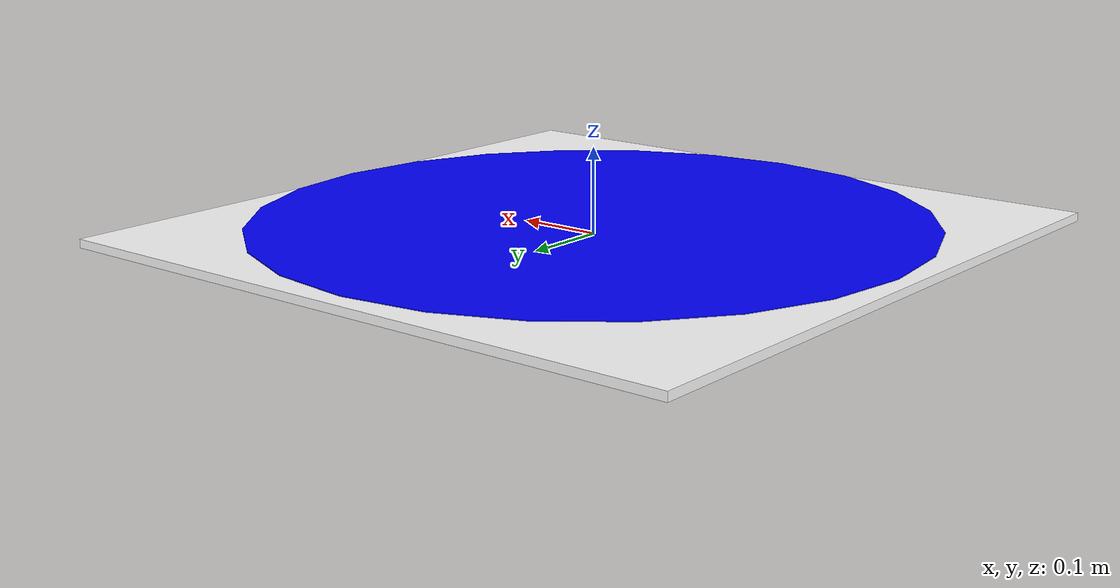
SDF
<?xml version="1.0" ?>
<sdf version="1.10">
  <model name="plataforma_com_circulo">
    <static>true</static>
    <pose>0 0 0.005 0 0 0</pose> <!-- levemente acima do solo -->
    <link name="link">

      <!-- Base branca (quadrado) -->
      <visual name="base">
        <pose>0 0 0 0 0 0</pose>
        <geometry>
          <box>
            <size>0.8 0.8 0.01</size>
          </box>
        </geometry>
        <material>
          <ambient>1 1 1 1</ambient>
          <diffuse>1 1 1 1</diffuse>
        </material>
      </visual>

      <!-- Círculo azul por cima -->
      <visual name="circle">
        <pose>0 0 0.011 0 0 0</pose> <!-- ligeiramente acima da base -->
        <geometry>
          <cylinder>
            <radius>0.39</radius> <!-- ajustável -->
            <length>0.001</length>
          </cylinder>
        </geometry>
        <material>
          <ambient>0 0 1 1</ambient>
          <diffuse>0 0 1 1</diffuse>
        </material>
      </visual>

    </link>
  </model>
</sdf>
